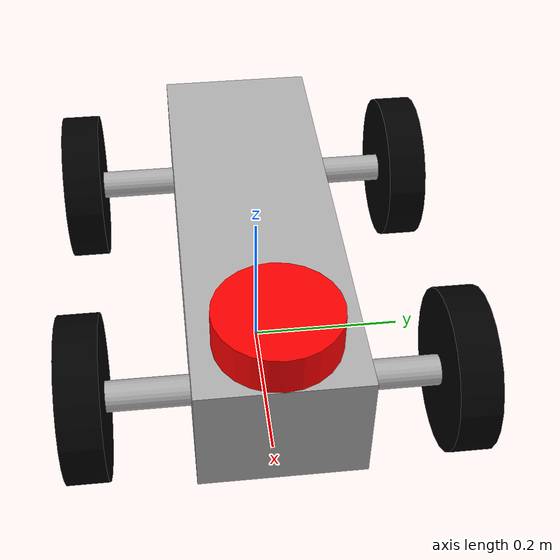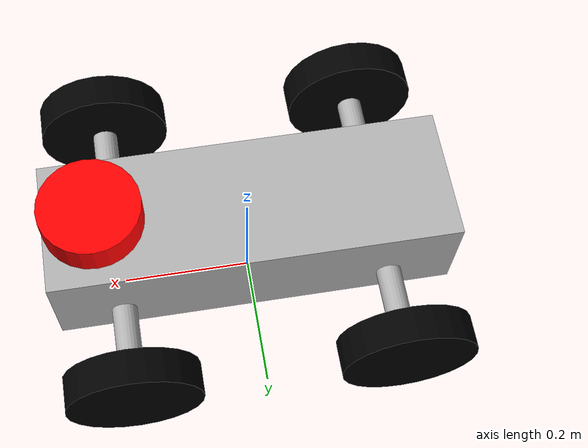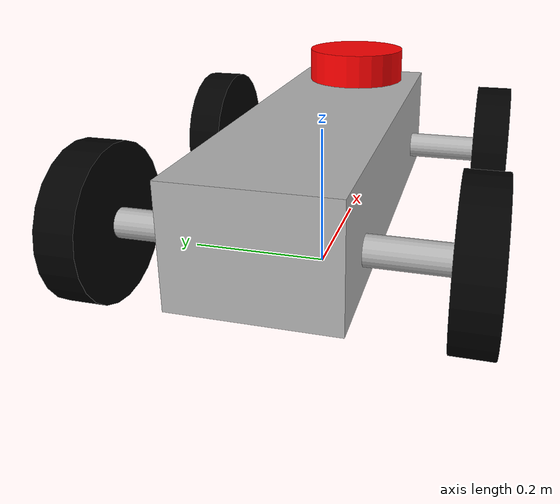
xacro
<?xml version="1.0"?>
<robot name="my_robot" xmlns:xacro="http://www.ros.org/wiki/xacro">

    <!-- imported xacro my robot links-->
    <xacro:include filename="colours.xacro" />
    <xacro:include filename="robot_base.xacro" />
    <xacro:include filename="wheel_links.xacro" />
    <xacro:include filename="steer_links.xacro" />
    <xacro:include filename="lidar.xacro" />
    <xacro:include filename="plugins.xacro" />

    <xacro:wheel_link wheel_link_prefix="back_left" />
    <xacro:wheel_link wheel_link_prefix="back_right" />
    <xacro:wheel_link wheel_link_prefix="front_left" />
    <xacro:wheel_link wheel_link_prefix="front_right" />

    <xacro:steer_link steer_link_prefix="front_right_rod" />
    <xacro:steer_link steer_link_prefix="front_left_rod" />
    <xacro:steer_link steer_link_prefix="back_right_rod" />
    <xacro:steer_link steer_link_prefix="back_left_rod" />

    <xacro:property name="Rod_x" value="${(length/(2*length)) -length/2}" />
    <xacro:property name="Rod_y" value="${width/2 +rod_length/2}" />
    <xacro:property name="Rod_z" value="${wheel_radius/2}" />

    <!-- Front left and right wheel rods -->
    <joint name="left_steer_joint" type="fixed">
        <parent link="base_link" />
        <child link="front_left_rod_steer" />
        <origin xyz="${Rod_x} ${Rod_y} ${Rod_z}" rpy="0.0 0.0 0.0" />
        <axis xyz="0.0 0.0 1.0" />
    </joint>

    <joint name="right_steer_joint" type="fixed">
        <parent link="base_link" />
        <child link="front_right_rod_steer" />
        <origin xyz="${Rod_x} ${-Rod_y} ${Rod_z}" rpy="0.0 0.0 0.0" />
        <axis xyz="0.0 0.0 1.0" />
    </joint>

    <!-- Front left and right wheels -->
    <joint name="front_left_wheel_joint" type="continuous">
        <parent link="front_left_rod_steer" />
        <child link="front_left_wheel" />
        <origin xyz="0.0 0.075 0.0" rpy="0.0 0.0 0.0" />
        <axis xyz="0.0 1.0 0" />

    </joint>
    <joint name="front_right_wheel_joint" type="continuous">
        <parent link="front_right_rod_steer" />
        <child link="front_right_wheel" />
        <origin xyz="0.0 -0.075 0.0" rpy="0.0 0.0 0.0" />
        <axis xyz="0.0 1.0 0" />

    </joint>

    <!-- Back left and right wheel rods -->
    <joint name="back_left_rod_joint" type="fixed">
        <parent link="base_link" />
        <child link="back_left_rod_steer" />
        <origin xyz="${-Rod_x} ${Rod_y} ${Rod_z}" rpy="0.0 0.0 0.0" />
        <axis xyz="0.0 0.0 1.0" />
    </joint>
    <joint name="back_right_rod_joint" type="fixed">
        <parent link="base_link" />
        <child link="back_right_rod_steer" />
        <origin xyz="${-Rod_x} ${-Rod_y} ${Rod_z}" rpy="0.0 0.0 0.0" />
        <axis xyz="0.0 0.0 1.0" />
    </joint>

    <!-- Front left and right wheels -->
    <joint name="back_left_wheel_joint" type="continuous">
        <parent link="back_left_rod_steer" />
        <child link="back_left_wheel" />
        <origin xyz="0 0.075 0" rpy="0.0 0.0 0.0" />
        <axis xyz="0.0 1.0 0.0" />
    </joint>
    <joint name="back_right_wheel_joint" type="continuous">
        <parent link="back_right_rod_steer" />
        <child link="back_right_wheel" />
        <origin xyz="0 -0.075 0" rpy="0.0 0.0 0.0" />
        <axis xyz="0.0 1.0 0.0" />
    </joint>

</robot>

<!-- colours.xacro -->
<robot xmlns:xacro="http://www.ros.org/wiki/xacro">

    <material name="grey">
        <color rgba="0.7 0.7 0.7 1.0" />
    </material>

    <material name="green">
        <color rgba="0.0 0.6 0.0 1.0" />
    </material>

    <material name="white">
        <color rgba="1.0 1.0 1.0 1.0" />
    </material>

    <material name="black">
        <color rgba="0.0 0.0 0.0 1.0" />
    </material>

    <material name="red">
        <color rgba="1.0 0.0 0.0 1.0" />
    </material>

</robot>

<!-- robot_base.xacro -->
<robot xmlns:xacro="http://www.ros.org/wiki/xacro">

    <xacro:include filename="inertia.xacro" />
    <xacro:property name="base_mass" value="0.5" />
    <xacro:property name="length" value="0.6" />
    <xacro:property name="height" value="0.15" />
    <xacro:property name="width" value="0.2" />

    <xacro:macro name="base_origin">
        <origin xyz="0 0 ${height/2}" rpy="0 0 0" />
    </xacro:macro>

    <link name="base_footprint" />

    <link name="base_link">
        <visual>
            <geometry>
                <box size="${length} ${width} ${height}" />
            </geometry>
            <xacro:base_origin />
            <material name="grey" />
        </visual>

        <collision>
            <geometry>
                <box size="${length} ${width} ${height}" />
            </geometry>
            <xacro:base_origin />
        </collision>

        <xacro:cuboid_inertia mass="${base_mass}" a="${length}" b="${height}" c="${width}">
            <xacro:base_origin />
        </xacro:cuboid_inertia>

    </link>

    <joint name="base_joint" type="fixed">
        <parent link="base_footprint" />
        <child link="base_link" />
        <xacro:base_origin />
    </joint>

</robot>

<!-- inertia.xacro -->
<robot xmlns:xacro="http://www.ros.org/wiki/xacro">

    <xacro:macro name="cuboid_inertia" params="mass a b c *origin">
        <inertial>
            <xacro:insert_block name="origin" />
            <mass value="${mass}" />
            <inertia ixx="${(1/12)*mass*(b*b+c*c) }" ixy="0.0" ixz="0.0"
                iyy="${(1/12)*mass*(a*a+b*b) }" iyz="0.0" izz="${(1/12)*mass*(a*a+c*c) }" />
        </inertial>
    </xacro:macro>

    <xacro:macro name="cylinder_inertia" params="mass radius length *origin">
        <inertial>
            <xacro:insert_block name="origin" />
            <mass value="${mass}" />
            <inertia ixx="${mass*(3*radius*radius + length*length)/12 }" ixy="0.0" ixz="0.0"
                iyy="${mass*(3*radius*radius + length*length)/12 }" iyz="0.0"
                izz="${mass*radius*radius /2 }" />
        </inertial>
    </xacro:macro>

</robot>

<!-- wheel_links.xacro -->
<robot xmlns:xacro="http://www.ros.org/wiki/xacro">

    <xacro:include filename="inertia.xacro" />

    <xacro:property name="wheel_radius" value="0.1" />
    <xacro:property name="wheel_length" value="0.05" />
    <xacro:property name="wheel_mass" value="0.2" />

    <xacro:macro name="wheel_link" params="wheel_link_prefix">

        <link name="${wheel_link_prefix}_wheel">
            <visual>
                <geometry>
                    <cylinder radius="${wheel_radius}" length="${wheel_length}" />
                </geometry>
                <origin xyz="0.0 0.0 0.0" rpy="${pi/2} 0.0 0.0" />
                <material name="black" />
            </visual>
            <collision>
                <geometry>
                    <cylinder radius="${wheel_radius}" length="${wheel_length}" />
                </geometry>
                <origin xyz="0.0 0.0 0.0" rpy="${pi/2} 0.0 0.0" />
            </collision>

            <xacro:cylinder_inertia mass="${wheel_mass}" radius="${wheel_radius}"
                length="${wheel_length}">
                <origin xyz="0.0 0.0 0.0" rpy="${pi/2} 0 0" />
            </xacro:cylinder_inertia>

        </link>
    </xacro:macro>

</robot>

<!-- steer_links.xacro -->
<robot xmlns:xacro="http://www.ros.org/wiki/xacro">

    <xacro:include filename="inertia.xacro" />

    <xacro:property name="rod_radius" value="0.01875" />
    <xacro:property name="rod_length" value="0.1" />
    <xacro:property name="rod_mass" value="0.1" />

    <xacro:macro name="steer_link" params="steer_link_prefix">
        <link name="${steer_link_prefix}_steer">

            <visual>
                <geometry>
                    <cylinder radius="${rod_radius}" length="${rod_length}" />
                </geometry>
                <origin xyz="0.0 0.0 0.0" rpy="${pi/2} 0.0 0.0" />
                <material name="grey" />
            </visual>

            <collision>
                <geometry>
                    <cylinder radius="${rod_radius}" length="${rod_length}" />
                </geometry>
                <origin xyz="0.0 0.0 0.0" rpy="${pi/2} 0.0 0.0" />
            </collision>

            <xacro:cylinder_inertia mass="${rod_mass}" radius="${rod_radius}"
                length="${rod_length}">
                <origin xyz="0.0 0.0 0.0" rpy="${pi/2} 0.0 0.0" />
            </xacro:cylinder_inertia>

        </link>
    </xacro:macro>

</robot>

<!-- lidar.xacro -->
<robot xmlns:xacro="http://www.ros.org/wiki/xacro">

    <xacro:property name="lidar_radius" value="0.075" />
    <xacro:property name="lidar_length" value="0.05" />
    <xacro:property name="lidar_mass" value="0.2" />

    <xacro:property name="lidar_x" value="${length/2 - lidar_radius}" />
    <xacro:property name="lidar_z" value="${height + lidar_length/2}" />

    <!-- lidar joint -->

    <joint name="lidar_joint" type="fixed">
        <parent link="base_link" />
        <child link="lidar_link" />
        <origin xyz="${lidar_x} 0 ${lidar_z}" rpy="0.0 0.0 0" />

    </joint>

    <link name="lidar_link">
        <visual>
            <geometry>
                <cylinder radius="${lidar_radius}" length="${lidar_length}" />
            </geometry>
            <origin xyz="0.0 0.0 0.0" rpy="0.0 0.0 0.0" />
            <material name="red" />
        </visual>

        <collision>
            <geometry>
                <cylinder radius="${lidar_radius}" length="${lidar_length}" />
            </geometry>
            <origin xyz="0.0 0.0 0.0" rpy="0.0 0.0 0.0" />
        </collision>

        <xacro:cylinder_inertia mass="${lidar_mass}" radius="${lidar_radius}"
            length="${lidar_length}">
            <origin xyz="0.0 0.0 0.0" rpy="${pi/2} 0.0 0.0" />
        </xacro:cylinder_inertia>

    </link>

    <gazebo reference="lidar_link">
        <sensor name='gpu_lidar' type='gpu_lidar'>
            <always_on>true</always_on>
            <visualize>true</visualize>
            <pose> 0 0 0 0 0 0 </pose>
            <update_rate>5</update_rate>
            <topic>scan</topic>
            <gz_frame_id>lidar_link</gz_frame_id>

            <lidar>
                <scan>
                    <horizontal>
                        <samples>360</samples>
                        <resolution>1</resolution>
                        <min_angle>-3.14</min_angle>
                        <max_angle>3.14</max_angle>
                    </horizontal>
                </scan>
                <range>
                    <min>0.3</min>
                    <max>12</max>
                    <resolution>0.01</resolution>
                </range>
            </lidar>
        </sensor>
    </gazebo>

</robot>
